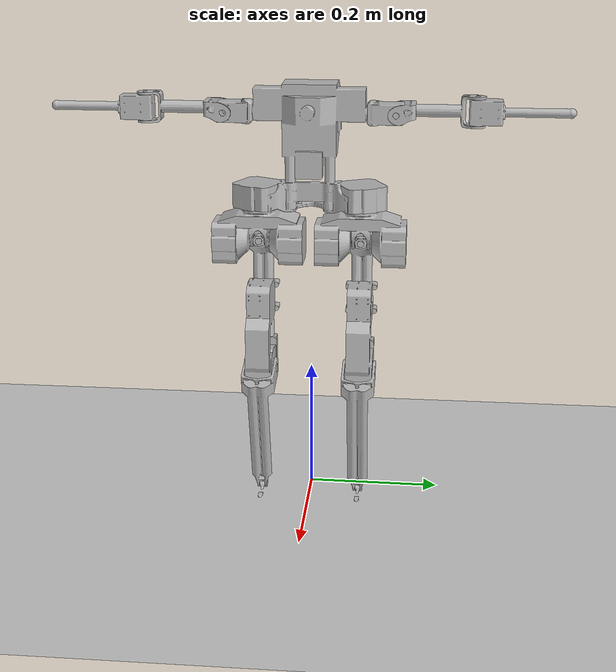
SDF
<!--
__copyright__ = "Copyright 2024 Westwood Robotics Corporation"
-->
<sdf version="1.6">
    <world name="default">
        <physics type="ode">
          <gravity>0 0 -9.81</gravity>
          <ode>
            <solver>
              <type>quick</type>
              <dt>0.001</dt>
              <iters>40</iters>
              <sor>1.0</sor>
            </solver>
            <constraints>
              <cfm>0.0</cfm>
              <erp>0.2</erp>
              <contact_max_correcting_vel>100.0</contact_max_correcting_vel>
              <contact_surface_layer>0.0</contact_surface_layer>
            </constraints>
          </ode>
        </physics>
            <include>
                <uri>model://ground_plane</uri>
            </include>
            <include>
                <uri>model://sun</uri>
            </include>
            <include>
                <uri>model://bruce</uri>
                <plugin name="gazebo_model_plugin" filename="bruce_gazebo_model_interface.so">
                    <robot_name>bruce</robot_name>
                </plugin>
                <pose>0 0 0.45 0 0 0</pose>
            </include>
        <plugin name="gazebo_world_plugin" filename="bruce_gazebo_world_interface.so">
            <world_name>world</world_name>
        </plugin>
    </world>
</sdf>
